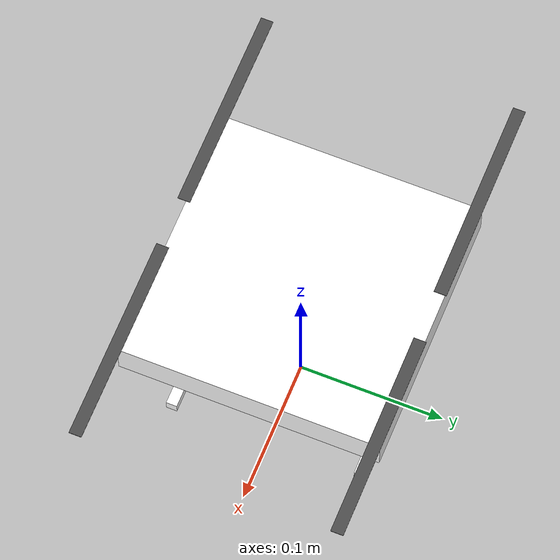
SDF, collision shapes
<?xml version="1.0" ?>
<sdf version="1.9">
  <model name="flying_drone">

    <!-- ── Base airframe + rotors from x500_base ──────────────────────── -->
    <include merge="true">
      <uri>model://x500_base</uri>
    </include>

    <!-- ── Downward-facing mono camera ─────────────────────────────────── -->
    <link name="down_cam_link">
      <pose>0 0 -0.05 0 1.5708 0</pose>
      <inertial>
        <mass>0.001</mass>
        <inertia>
          <ixx>1e-7</ixx><ixy>0</ixy><ixz>0</ixz>
          <iyy>1e-7</iyy><iyz>0</iyz>
          <izz>1e-7</izz>
        </inertia>
      </inertial>
      <sensor name="mono_camera" type="camera">
        <always_on>1</always_on>
        <update_rate>1</update_rate>
        <camera>
          <horizontal_fov>1.047</horizontal_fov>
          <image>
            <width>800</width>
            <height>600</height>
            <format>RGB_INT8</format>
          </image>
          <clip><near>0.1</near><far>100</far></clip>
        </camera>
        <topic>mono_camera</topic>
      </sensor>
    </link>
    <joint name="down_cam_joint" type="fixed">
      <parent>base_link</parent>
      <child>down_cam_link</child>
    </joint>

    <!-- ── Front-facing RGB camera ──────────────────────────────────────── -->
    <link name="front_rgb_link">
      <pose>0.1 0 0 0 0.3 0</pose>
      <inertial>
        <mass>0.001</mass>
        <inertia>
          <ixx>1e-7</ixx><ixy>0</ixy><ixz>0</ixz>
          <iyy>1e-7</iyy><iyz>0</iyz>
          <izz>1e-7</izz>
        </inertia>
      </inertial>
      <sensor name="rgb_camera" type="camera">
        <always_on>1</always_on>
        <update_rate>1</update_rate>
        <camera>
          <horizontal_fov>1.047</horizontal_fov>
          <image>
            <width>800</width>
            <height>600</height>
            <format>RGB_INT8</format>
          </image>
          <clip><near>0.1</near><far>100</far></clip>
        </camera>
        <topic>rgb_camera</topic>
      </sensor>
    </link>
    <joint name="front_rgb_joint" type="fixed">
      <parent>base_link</parent>
      <child>front_rgb_link</child>
    </joint>

    <!-- ── Downward-pointing rangefinder (single-ray LiDAR for alt hold) ── -->
    <link name="rangefinder_link">
      <pose>0 0 -0.05 0 1.5708 0</pose>
      <inertial>
        <mass>0.001</mass>
        <inertia>
          <ixx>1e-7</ixx><ixy>0</ixy><ixz>0</ixz>
          <iyy>1e-7</iyy><iyz>0</iyz>
          <izz>1e-7</izz>
        </inertia>
      </inertial>
      <sensor name="rangefinder" type="gpu_lidar">
        <pose>0 0 0 0 0 0</pose>
        <topic>rangefinder</topic>
        <update_rate>10</update_rate>
        <lidar>
          <scan>
            <horizontal>
              <samples>1</samples>
              <resolution>1</resolution>
              <min_angle>0</min_angle>
              <max_angle>0</max_angle>
            </horizontal>
            <vertical>
              <samples>1</samples>
              <resolution>1</resolution>
              <min_angle>0</min_angle>
              <max_angle>0</max_angle>
            </vertical>
          </scan>
          <range>
            <min>0.1</min>
            <max>15.0</max>
            <resolution>0.01</resolution>
          </range>
        </lidar>
        <always_on>true</always_on>
        <visualize>false</visualize>
      </sensor>
    </link>
    <joint name="rangefinder_joint" type="fixed">
      <parent>base_link</parent>
      <child>rangefinder_link</child>
    </joint>

    <!-- ── Front-facing depth camera ────────────────────────────────────── -->
    <link name="front_depth_link">
      <pose>0.1 0 0.02 0 0.3 0</pose>
      <inertial>
        <mass>0.001</mass>
        <inertia>
          <ixx>1e-7</ixx><ixy>0</ixy><ixz>0</ixz>
          <iyy>1e-7</iyy><iyz>0</iyz>
          <izz>1e-7</izz>
        </inertia>
      </inertial>
      <sensor name="depth_camera" type="depth_camera">
        <always_on>1</always_on>
        <update_rate>1</update_rate>
        <camera>
          <horizontal_fov>1.047</horizontal_fov>
          <image>
            <width>640</width>
            <height>480</height>
          </image>
          <clip><near>0.1</near><far>50</far></clip>
        </camera>
        <topic>depth_camera</topic>
      </sensor>
    </link>
    <joint name="front_depth_joint" type="fixed">
      <parent>base_link</parent>
      <child>front_depth_link</child>
    </joint>

    <plugin filename="gz-sim-multicopter-motor-model-system"
            name="gz::sim::systems::MulticopterMotorModel">
      <robotNamespace>flying_drone</robotNamespace>
      <jointName>rotor_0_joint</jointName>
      <linkName>rotor_0</linkName>
      <turningDirection>ccw</turningDirection>
      <timeConstantUp>0.0125</timeConstantUp>
      <timeConstantDown>0.025</timeConstantDown>
      <maxRotVelocity>800.0</maxRotVelocity>
      <motorConstant>8.54858e-06</motorConstant>
      <momentConstant>0.016</momentConstant>
      <commandSubTopic>gazebo/command/motor_speed</commandSubTopic>
      <motorNumber>0</motorNumber>
      <rotorDragCoefficient>8.06428e-05</rotorDragCoefficient>
      <rollingMomentCoefficient>1e-06</rollingMomentCoefficient>
      <motorSpeedPubTopic>motor_speed/0</motorSpeedPubTopic>
      <rotorVelocitySlowdownSim>10</rotorVelocitySlowdownSim>
      <motorType>velocity</motorType>
    </plugin>

    <plugin filename="gz-sim-multicopter-motor-model-system"
            name="gz::sim::systems::MulticopterMotorModel">
      <robotNamespace>flying_drone</robotNamespace>
      <jointName>rotor_1_joint</jointName>
      <linkName>rotor_1</linkName>
      <turningDirection>ccw</turningDirection>
      <timeConstantUp>0.0125</timeConstantUp>
      <timeConstantDown>0.025</timeConstantDown>
      <maxRotVelocity>800.0</maxRotVelocity>
      <motorConstant>8.54858e-06</motorConstant>
      <momentConstant>0.016</momentConstant>
      <commandSubTopic>gazebo/command/motor_speed</commandSubTopic>
      <motorNumber>1</motorNumber>
      <rotorDragCoefficient>8.06428e-05</rotorDragCoefficient>
      <rollingMomentCoefficient>1e-06</rollingMomentCoefficient>
      <motorSpeedPubTopic>motor_speed/1</motorSpeedPubTopic>
      <rotorVelocitySlowdownSim>10</rotorVelocitySlowdownSim>
      <motorType>velocity</motorType>
    </plugin>

    <plugin filename="gz-sim-multicopter-motor-model-system"
            name="gz::sim::systems::MulticopterMotorModel">
      <robotNamespace>flying_drone</robotNamespace>
      <jointName>rotor_2_joint</jointName>
      <linkName>rotor_2</linkName>
      <turningDirection>cw</turningDirection>
      <timeConstantUp>0.0125</timeConstantUp>
      <timeConstantDown>0.025</timeConstantDown>
      <maxRotVelocity>800.0</maxRotVelocity>
      <motorConstant>8.54858e-06</motorConstant>
      <momentConstant>0.016</momentConstant>
      <commandSubTopic>gazebo/command/motor_speed</commandSubTopic>
      <motorNumber>2</motorNumber>
      <rotorDragCoefficient>8.06428e-05</rotorDragCoefficient>
      <rollingMomentCoefficient>1e-06</rollingMomentCoefficient>
      <motorSpeedPubTopic>motor_speed/2</motorSpeedPubTopic>
      <rotorVelocitySlowdownSim>10</rotorVelocitySlowdownSim>
      <motorType>velocity</motorType>
    </plugin>

    <plugin filename="gz-sim-multicopter-motor-model-system"
            name="gz::sim::systems::MulticopterMotorModel">
      <robotNamespace>flying_drone</robotNamespace>
      <jointName>rotor_3_joint</jointName>
      <linkName>rotor_3</linkName>
      <turningDirection>cw</turningDirection>
      <timeConstantUp>0.0125</timeConstantUp>
      <timeConstantDown>0.025</timeConstantDown>
      <maxRotVelocity>800.0</maxRotVelocity>
      <motorConstant>8.54858e-06</motorConstant>
      <momentConstant>0.016</momentConstant>
      <commandSubTopic>gazebo/command/motor_speed</commandSubTopic>
      <motorNumber>3</motorNumber>
      <rotorDragCoefficient>8.06428e-05</rotorDragCoefficient>
      <rollingMomentCoefficient>1e-06</rollingMomentCoefficient>
      <motorSpeedPubTopic>motor_speed/3</motorSpeedPubTopic>
      <rotorVelocitySlowdownSim>10</rotorVelocitySlowdownSim>
      <motorType>velocity</motorType>
    </plugin>

    <plugin filename="gz-sim-multicopter-control-system"
            name="gz::sim::systems::MulticopterVelocityControl">
      <robotNamespace>flying_drone</robotNamespace>
      <commandSubTopic>gazebo/command/twist</commandSubTopic>
      <enableSubTopic>enable</enableSubTopic>
      <comLinkName>base_link</comLinkName>
      <velocityGain>2.7 2.7 2.7</velocityGain>
      <attitudeGain>2 3 0.15</attitudeGain>
      <angularRateGain>0.4 0.52 0.18</angularRateGain>
      <maximumLinearAcceleration>2 2 2</maximumLinearAcceleration>
      <maximumLinearVelocity>5 5 5</maximumLinearVelocity>
      <maximumAngularVelocity>3 3 3</maximumAngularVelocity>
      <rotorConfiguration>
        <rotor>
          <jointName>rotor_0_joint</jointName>
          <forceConstant>8.54858e-06</forceConstant>
          <momentConstant>0.016</momentConstant>
          <direction>1</direction>
        </rotor>
        <rotor>
          <jointName>rotor_1_joint</jointName>
          <forceConstant>8.54858e-06</forceConstant>
          <momentConstant>0.016</momentConstant>
          <direction>1</direction>
        </rotor>
        <rotor>
          <jointName>rotor_2_joint</jointName>
          <forceConstant>8.54858e-06</forceConstant>
          <momentConstant>0.016</momentConstant>
          <direction>-1</direction>
        </rotor>
        <rotor>
          <jointName>rotor_3_joint</jointName>
          <forceConstant>8.54858e-06</forceConstant>
          <momentConstant>0.016</momentConstant>
          <direction>-1</direction>
        </rotor>
      </rotorConfiguration>
    </plugin>

    <!-- ── 3-D Odometry publisher ─────────────────────────────────────────
         Publishes to: model/flying_drone/odometry
    ─────────────────────────────────────────────────────────────────────── -->
    <plugin filename="gz-sim-odometry-publisher-system"
            name="gz::sim::systems::OdometryPublisher">
      <odom_frame>odom</odom_frame>
      <robot_base_frame>base_link</robot_base_frame>
      <odom_publish_frequency>20</odom_publish_frequency>
      <dimensions>3</dimensions>
    </plugin>

  </model>
</sdf>

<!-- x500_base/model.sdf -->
<sdf version='1.9'>
  <model name='x500_base'>
    <pose>0 0 0.12 0 0 0</pose>
    <self_collide>false</self_collide>
    <static>false</static>
    <link name="base_link">
      <inertial>
        <mass>1.0</mass>
        <inertia>
          <ixx>0.005416666666666667</ixx>
          <ixy>0</ixy>
          <ixz>0</ixz>
          <iyy>0.005416666666666667</iyy>
          <iyz>0</iyz>
          <izz>0.010000000000000002</izz>
        </inertia>
      </inertial>
      <gravity>true</gravity>
      <velocity_decay/>
      <visual name="base_link_visual">
        <pose>0 0 0.0125 0 0 3.141592654</pose>
        <geometry>
          <mesh>
            <scale>0.5 0.5 0.5</scale>
            <uri>model://x500_base/meshes/NXP-HGD-CF.dae</uri>
          </mesh>
        </geometry>
      </visual>
      <visual name="5010_motor_base_0">
        <pose>0.087 0.087 0.016 0 0 -0.45</pose>
        <geometry>
          <mesh>
            <scale>0.5 0.5 0.5</scale>
            <uri>model://x500_base/meshes/5010Base.dae</uri>
          </mesh>
        </geometry>
      </visual>
      <visual name="5010_motor_base_1">
        <pose>-0.087 0.087 0.016 0 0 -0.45</pose>
        <geometry>
          <mesh>
            <scale>0.5 0.5 0.5</scale>
            <uri>model://x500_base/meshes/5010Base.dae</uri>
          </mesh>
        </geometry>
      </visual>
      <visual name="5010_motor_base_2">
        <pose>0.087 -0.087 0.016 0 0 -0.45</pose>
        <geometry>
          <mesh>
            <scale>0.5 0.5 0.5</scale>
            <uri>model://x500_base/meshes/5010Base.dae</uri>
          </mesh>
        </geometry>
      </visual>
      <visual name="5010_motor_base_3">
        <pose>-0.087 -0.087 0.016 0 0 -0.45</pose>
        <geometry>
          <mesh>
            <scale>0.5 0.5 0.5</scale>
            <uri>model://x500_base/meshes/5010Base.dae</uri>
          </mesh>
        </geometry>
      </visual>
      <visual name="NXP_FMUK66_FRONT">
        <pose>0.0235 0.0005 0.0215 1 0 1.57</pose>
        <cast_shadows>false</cast_shadows>
        <geometry>
          <plane>
            <normal>0 0 1</normal>
            <size>0.0065 0.0035</size>
          </plane>
        </geometry>
        <material>
          <diffuse>1.0 1.0 1.0</diffuse>
          <specular>1.0 1.0 1.0</specular>
          <pbr>
            <metal>
              <albedo_map>model://x500_base/materials/textures/nxp.png</albedo_map>
            </metal>
          </pbr>
        </material>
      </visual>
      <visual name="NXP_FMUK66_TOP">
        <pose>-0.0115 0 0.02575 0 0 -1.57</pose>
        <cast_shadows>false</cast_shadows>
        <geometry>
          <plane>
            <normal>0 0 1</normal>
            <size>0.0065 0.0035</size>
          </plane>
        </geometry>
        <material>
          <diffuse>1.0 1.0 1.0</diffuse>
          <specular>1.0 1.0 1.0</specular>
          <pbr>
            <metal>
              <albedo_map>model://x500_base/materials/textures/nxp.png</albedo_map>
            </metal>
          </pbr>
        </material>
      </visual>
      <visual name="RDDRONE_FMUK66_TOP">
        <pose>-0.015 0 0.02575 0 0 -1.57</pose>
        <cast_shadows>false</cast_shadows>
        <geometry>
          <plane>
            <normal>0 0 1</normal>
            <size>0.016 0.0017</size>
          </plane>
        </geometry>
        <material>
          <diffuse>1.0 1.0 1.0</diffuse>
          <specular>1.0 1.0 1.0</specular>
          <pbr>
            <metal>
              <albedo_map>model://x500_base/materials/textures/rd.png</albedo_map>
            </metal>
          </pbr>
        </material>
      </visual>
      <collision name="base_link_collision_0">
        <pose>0 0 0.0035 0 0 0</pose>
        <geometry>
          <box>
            <size>0.17677669529663686 0.17677669529663686 0.025</size>
          </box>
        </geometry>
        <surface>
          <contact>
            <ode>
              <min_depth>0.001</min_depth>
              <max_vel>0</max_vel>
            </ode>
          </contact>
          <friction>
            <ode/>
          </friction>
        </surface>
      </collision>
      <collision name="base_link_collision_1">
        <pose>0 -0.049 -0.0615 -0.35 0 0</pose>
        <geometry>
          <box>
            <size>0.0075 0.0075 0.105</size>
          </box>
        </geometry>
        <surface>
          <contact>
            <ode>
              <min_depth>0.001</min_depth>
              <max_vel>0</max_vel>
            </ode>
          </contact>
          <friction>
            <ode/>
          </friction>
        </surface>
      </collision>
      <collision name="base_link_collision_2">
        <pose>0 0.049 -0.0615 0.35 0 0</pose>
        <geometry>
          <box>
            <size>0.0075 0.0075 0.105</size>
          </box>
        </geometry>
        <surface>
          <contact>
            <ode>
              <min_depth>0.001</min_depth>
              <max_vel>0</max_vel>
            </ode>
          </contact>
          <friction>
            <ode/>
          </friction>
        </surface>
      </collision>
      <collision name="base_link_collision_3">
        <pose>0 -0.066 -0.10975 0 0 0</pose>
        <geometry>
          <box>
            <size>0.125 0.0075 0.0075</size>
          </box>
        </geometry>
        <surface>
          <contact>
            <ode>
              <min_depth>0.001</min_depth>
              <max_vel>0</max_vel>
            </ode>
          </contact>
          <friction>
            <ode/>
          </friction>
        </surface>
      </collision>
      <collision name="base_link_collision_4">
        <pose>0 0.066 -0.10975 0 0 0</pose>
        <geometry>
          <box>
            <size>0.125 0.0075 0.0075</size>
          </box>
        </geometry>
        <surface>
          <contact>
            <ode>
              <min_depth>0.001</min_depth>
              <max_vel>0</max_vel>
            </ode>
          </contact>
          <friction>
            <ode/>
          </friction>
        </surface>
      </collision>
      <sensor name="air_pressure_sensor" type="air_pressure">
        <always_on>1</always_on>
        <update_rate>50</update_rate>
        <air_pressure>
          <pressure>
            <noise type="gaussian">
              <mean>0</mean>
              <stddev>0.01</stddev>
            </noise>
          </pressure>
        </air_pressure>
      </sensor>
      <sensor name="imu_sensor" type="imu">
        <always_on>1</always_on>
        <update_rate>250</update_rate>
        <imu>
          <angular_velocity>
            <x>
              <noise type="gaussian">
                <mean>0</mean>
                <stddev>0.00018665</stddev>
                <dynamic_bias_stddev>3.8785e-05</dynamic_bias_stddev>
                <dynamic_bias_correlation_time>1000</dynamic_bias_correlation_time>
              </noise>
            </x>
            <y>
              <noise type="gaussian">
                <mean>0</mean>
                <stddev>0.00018665</stddev>
                <dynamic_bias_stddev>3.8785e-05</dynamic_bias_stddev>
                <dynamic_bias_correlation_time>1000</dynamic_bias_correlation_time>
              </noise>
            </y>
            <z>
              <noise type="gaussian">
                <mean>0</mean>
                <stddev>0.00018665</stddev>
                <dynamic_bias_stddev>3.8785e-05</dynamic_bias_stddev>
                <dynamic_bias_correlation_time>1000</dynamic_bias_correlation_time>
              </noise>
            </z>
          </angular_velocity>
          <linear_acceleration>
            <x>
              <noise type="gaussian">
                <mean>0</mean>
                <stddev>0.00186</stddev>
                <dynamic_bias_stddev>0.006</dynamic_bias_stddev>
                <dynamic_bias_correlation_time>300</dynamic_bias_correlation_time>
              </noise>
            </x>
            <y>
              <noise type="gaussian">
                <mean>0</mean>
                <stddev>0.00186</stddev>
                <dynamic_bias_stddev>0.006</dynamic_bias_stddev>
                <dynamic_bias_correlation_time>300</dynamic_bias_correlation_time>
              </noise>
            </y>
            <z>
              <noise type="gaussian">
                <mean>0</mean>
                <stddev>0.00186</stddev>
                <dynamic_bias_stddev>0.006</dynamic_bias_stddev>
                <dynamic_bias_correlation_time>300</dynamic_bias_correlation_time>
              </noise>
            </z>
          </linear_acceleration>
        </imu>
      </sensor>
      <sensor name="navsat_sensor" type="navsat">
        <always_on>1</always_on>
        <update_rate>30</update_rate>
      </sensor>
    </link>
    <link name="rotor_0">
      <gravity>true</gravity>
      <self_collide>false</self_collide>
      <velocity_decay/>
      <pose>0.087 -0.087 0.03 0 0 0</pose>
      <inertial>
          <mass>0.008038461538461538</mass>
          <inertia>
            <ixx>9.616227620998331e-08</ixx>
            <iyy>6.528962922925001e-06</iyy>
            <izz>6.62464558678501e-06</izz>
          </inertia>
        </inertial>
      <visual name="rotor_0_visual">
        <pose>-0.011 -0.07319230769230769 -0.008 0 0 0</pose>
        <geometry>
          <mesh>
            <scale>0.4230769230769231 0.4230769230769231 0.4230769230769231</scale>
            <uri>model://x500_base/meshes/1345_prop_ccw.stl</uri>
          </mesh>
        </geometry>
        <material>
          <script>
            <name>Gazebo/DarkGrey</name>
            <uri>file://media/materials/scripts/gazebo.material</uri>
          </script>
        </material>
      </visual>
      <visual name="rotor_0_visual_motor_bell">
        <pose>0 0 -0.016 0 0 0</pose>
        <geometry>
          <mesh>
            <scale>0.5 0.5 0.5</scale>
            <uri>model://x500_base/meshes/5010Bell.dae</uri>
          </mesh>
        </geometry>
      </visual>
      <collision name="rotor_0_collision">
        <pose>0 0 0 0 0 0 </pose>
        <geometry>
          <box>
            <size>0.1396153846153846 0.008461538461538461 0.0004230769230769231</size>
          </box>
        </geometry>
        <surface>
          <contact>
            <ode>
              <min_depth>0.001</min_depth>
              <max_vel>0</max_vel>
            </ode>
          </contact>
          <friction>
            <ode/>
          </friction>
        </surface>
      </collision>
    </link>
    <joint name="rotor_0_joint" type="revolute">
      <parent>base_link</parent>
      <child>rotor_0</child>
      <axis>
        <xyz>0 0 1</xyz>
        <limit>
          <lower>-1e+16</lower>
          <upper>1e+16</upper>
        </limit>
        <dynamics>
          <spring_reference>0</spring_reference>
          <spring_stiffness>0</spring_stiffness>
        </dynamics>
      </axis>
    </joint>
    <link name="rotor_1">
      <gravity>true</gravity>
      <self_collide>false</self_collide>
      <velocity_decay/>
      <pose>-0.087 0.087 0.03 0 0 0</pose>
      <inertial>
          <mass>0.008038461538461538</mass>
          <inertia>
            <ixx>9.616227620998331e-08</ixx>
            <iyy>6.528962922925001e-06</iyy>
            <izz>6.62464558678501e-06</izz>
          </inertia>
        </inertial>
      <visual name="rotor_1_visual">
        <pose>-0.011 -0.07319230769230769 -0.008 0 0 0</pose>
        <geometry>
          <mesh>
            <scale>0.4230769230769231 0.4230769230769231 0.4230769230769231</scale>
            <uri>model://x500_base/meshes/1345_prop_ccw.stl</uri>
          </mesh>
        </geometry>
        <material>
          <script>
            <name>Gazebo/DarkGrey</name>
            <uri>file://media/materials/scripts/gazebo.material</uri>
          </script>
        </material>
      </visual>
      <visual name="rotor_1_visual_motor_top">
        <pose>0 0 -0.016 0 0 0</pose>
        <geometry>
          <mesh>
            <scale>0.5 0.5 0.5</scale>
            <uri>model://x500_base/meshes/5010Bell.dae</uri>
          </mesh>
        </geometry>
      </visual>
      <collision name="rotor_1_collision">
        <pose>0 0 0 0 0 0 </pose>
        <geometry>
          <box>
            <size>0.1396153846153846 0.008461538461538461 0.0004230769230769231</size>
          </box>
        </geometry>
        <surface>
          <contact>
            <ode>
              <min_depth>0.001</min_depth>
              <max_vel>0</max_vel>
            </ode>
          </contact>
          <friction>
            <ode/>
          </friction>
        </surface>
      </collision>
    </link>
    <joint name="rotor_1_joint" type="revolute">
      <parent>base_link</parent>
      <child>rotor_1</child>
      <axis>
        <xyz>0 0 1</xyz>
        <limit>
          <lower>-1e+16</lower>
          <upper>1e+16</upper>
        </limit>
        <dynamics>
          <spring_reference>0</spring_reference>
          <spring_stiffness>0</spring_stiffness>
        </dynamics>
      </axis>
    </joint>
    <link name="rotor_2">
      <gravity>true</gravity>
      <self_collide>false</self_collide>
      <velocity_decay/>
      <pose>0.087 0.087 0.03 0 0 0</pose>
      <inertial>
          <mass>0.008038461538461538</mass>
          <inertia>
            <ixx>9.616227620998331e-08</ixx>
            <iyy>6.528962922925001e-06</iyy>
            <izz>6.62464558678501e-06</izz>
          </inertia>
        </inertial>
      <visual name="rotor_2_visual">
        <pose>-0.011 -0.07319230769230769 -0.008 0 0 0</pose>
        <geometry>
          <mesh>
            <scale>0.4230769230769231 0.4230769230769231 0.4230769230769231</scale>
            <uri>model://x500_base/meshes/1345_prop_cw.stl</uri>
          </mesh>
        </geometry>
        <material>
          <script>
            <name>Gazebo/DarkGrey</name>
            <uri>file://media/materials/scripts/gazebo.material</uri>
          </script>
        </material>
      </visual>
      <visual name="rotor_2_visual_motor_top">
        <pose>0 0 -0.016 0 0 0</pose>
        <geometry>
          <mesh>
            <scale>0.5 0.5 0.5</scale>
            <uri>model://x500_base/meshes/5010Bell.dae</uri>
          </mesh>
        </geometry>
      </visual>
      <collision name="rotor_2_collision">
        <pose>0 0 0 0 0 0 </pose>
        <geometry>
          <box>
            <size>0.1396153846153846 0.008461538461538461 0.0004230769230769231</size>
          </box>
        </geometry>
        <surface>
          <contact>
            <ode>
              <min_depth>0.001</min_depth>
              <max_vel>0</max_vel>
            </ode>
          </contact>
          <friction>
            <ode/>
          </friction>
        </surface>
      </collision>
    </link>
    <joint name="rotor_2_joint" type="revolute">
      <parent>base_link</parent>
      <child>rotor_2</child>
      <axis>
        <xyz>0 0 1</xyz>
        <limit>
          <lower>-1e+16</lower>
          <upper>1e+16</upper>
        </limit>
        <dynamics>
          <spring_reference>0</spring_reference>
          <spring_stiffness>0</spring_stiffness>
        </dynamics>
      </axis>
    </joint>
    <link name="rotor_3">
      <gravity>true</gravity>
      <self_collide>false</self_collide>
      <velocity_decay/>
      <pose>-0.087 -0.087 0.03 0 0 0</pose>
      <inertial>
          <mass>0.008038461538461538</mass>
          <inertia>
            <ixx>9.616227620998331e-08</ixx>
            <iyy>6.528962922925001e-06</iyy>
            <izz>6.62464558678501e-06</izz>
          </inertia>
        </inertial>
      <visual name="rotor_3_visual">
        <pose>-0.011 -0.07319230769230769 -0.008 0 0 0</pose>
        <geometry>
          <mesh>
            <scale>0.4230769230769231 0.4230769230769231 0.4230769230769231</scale>
            <uri>model://x500_base/meshes/1345_prop_cw.stl</uri>
          </mesh>
        </geometry>
        <material>
          <script>
            <name>Gazebo/DarkGrey</name>
            <uri>file://media/materials/scripts/gazebo.material</uri>
          </script>
        </material>
      </visual>
      <visual name="rotor_3_visual_motor_top">
        <pose>0 0 -0.016 0 0 0</pose>
        <geometry>
          <mesh>
            <scale>0.5 0.5 0.5</scale>
            <uri>model://x500_base/meshes/5010Bell.dae</uri>
          </mesh>
        </geometry>
      </visual>
      <collision name="rotor_3_collision">
        <pose>0 0 0 0 0 0 </pose>
        <geometry>
          <box>
            <size>0.1396153846153846 0.008461538461538461 0.0004230769230769231</size>
          </box>
        </geometry>
        <surface>
          <contact>
            <ode>
              <min_depth>0.001</min_depth>
              <max_vel>0</max_vel>
            </ode>
          </contact>
          <friction>
            <ode/>
          </friction>
        </surface>
      </collision>
    </link>
    <joint name="rotor_3_joint" type="revolute">
      <parent>base_link</parent>
      <child>rotor_3</child>
      <axis>
        <xyz>0 0 1</xyz>
        <limit>
          <lower>-1e+16</lower>
          <upper>1e+16</upper>
        </limit>
        <dynamics>
          <spring_reference>0</spring_reference>
          <spring_stiffness>0</spring_stiffness>
        </dynamics>
      </axis>
    </joint>
  </model>
</sdf>
